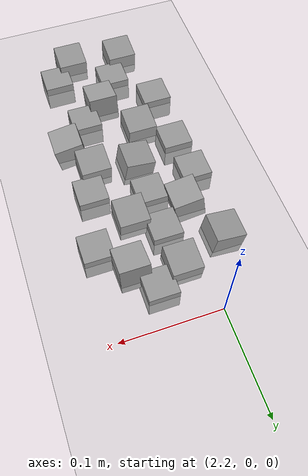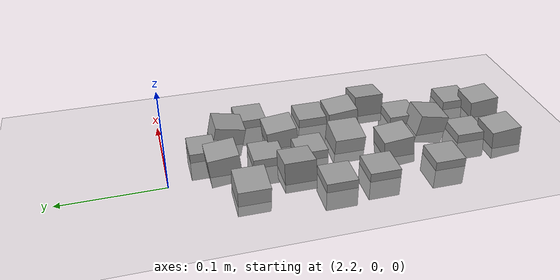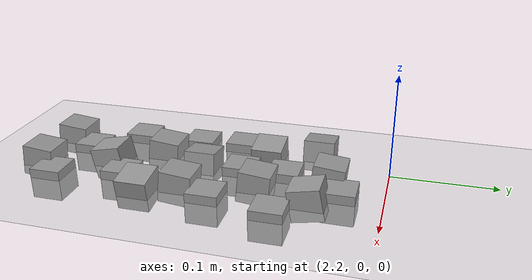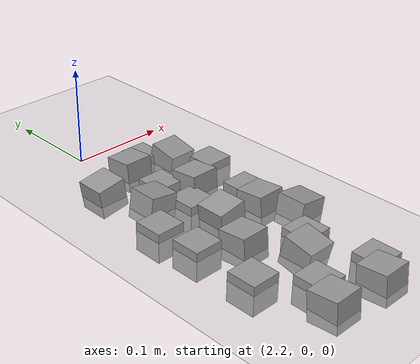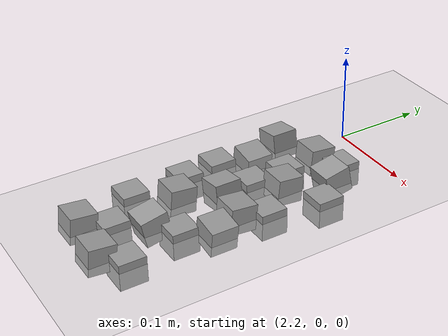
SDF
<sdf version="1.7">
 <world name="default">
  <model name="ground_plane">
   <static>1</static>
   <link name="link">
    <collision name="collision">
     <geometry><plane><normal>0 0 1</normal><size>100 100</size></plane></geometry>
     <surface><friction><ode><mu>100</mu><mu2>50</mu2></ode></friction></surface>
    </collision>
    <visual name="visual">
     <cast_shadows>0</cast_shadows>
     <geometry><plane><normal>0 0 1</normal><size>100 100</size></plane></geometry>
     <material>
      <script><uri>file://media/materials/scripts/gazebo.material</uri><name>Gazebo/Grey</name></script>
     </material>
    </visual>
   </link>
  </model>
  <model name="stone_road_4">
   <link name="link_0_clone_1">
    <inertial>
     <mass>1</mass>
     <inertia>
      <ixx>0.166667</ixx>
      <ixy>0</ixy>
      <ixz>0</ixz>
      <iyy>0.166667</iyy>
      <iyz>0</iyz>
      <izz>0.166667</izz>
     </inertia>
    </inertial>
    <pose>-0.022921 -0.129606 0.003778 0.2 -0 0</pose>
    <kinematic>1</kinematic>
    <visual name="visual">
     <geometry><box><size>0.03 0.03 0.03</size></box></geometry>
     <material>
      <lighting>1</lighting>
      <script><uri>file://media/materials/scripts/gazebo.material</uri><name>Gazebo/Grey</name></script>
      <shader type="pixel"><normal_map>__default__</normal_map></shader>
      <ambient>0.3 0.3 0.3 1</ambient>
      <diffuse>0.7 0.7 0.7 1</diffuse>
      <specular>0.01 0.01 0.01 1</specular>
      <emissive>0 0 0 1</emissive>
     </material>
    </visual>
    <collision name="collision">
     <geometry><box><size>0.03 0.03 0.03</size></box></geometry>
     <surface>
      <friction>
       <ode><mu>1</mu><mu2>1</mu2><fdir1>0 0 0</fdir1><slip1>0</slip1><slip2>0</slip2></ode>
       <torsional>
        <coefficient>1</coefficient>
        <patch_radius>0</patch_radius>
        <surface_radius>0</surface_radius>
        <use_patch_radius>1</use_patch_radius>
        <ode><slip>0</slip></ode>
       </torsional>
      </friction>
      <bounce><restitution_coefficient>0</restitution_coefficient><threshold>1e+06</threshold></bounce>
      <contact>
       <collide_without_contact>0</collide_without_contact>
       <collide_without_contact_bitmask>1</collide_without_contact_bitmask>
       <collide_bitmask>1</collide_bitmask>
       <ode>
        <soft_cfm>0</soft_cfm>
        <soft_erp>0.2</soft_erp>
        <kp>1e+13</kp>
        <kd>1</kd>
        <max_vel>0.01</max_vel>
        <min_depth>0</min_depth>
       </ode>
       <bullet>
        <split_impulse>1</split_impulse>
        <split_impulse_penetration_threshold>-0.01</split_impulse_penetration_threshold>
        <soft_cfm>0</soft_cfm>
        <soft_erp>0.2</soft_erp>
        <kp>1e+13</kp>
        <kd>1</kd>
       </bullet>
      </contact>
     </surface>
    </collision>
   </link>
   <link name="link_0_clone_11">
    <inertial>
     <mass>1</mass>
     <inertia>
      <ixx>0.166667</ixx>
      <ixy>0</ixy>
      <ixz>0</ixz>
      <iyy>0.166667</iyy>
      <iyz>0</iyz>
      <izz>0.166667</izz>
     </inertia>
    </inertial>
    <pose>0.007758 0.071496 0.003778 0.2 -0 0</pose>
    <kinematic>1</kinematic>
    <visual name="visual">
     <geometry><box><size>0.03 0.03 0.03</size></box></geometry>
     <material>
      <lighting>1</lighting>
      <script><uri>file://media/materials/scripts/gazebo.material</uri><name>Gazebo/Grey</name></script>
      <shader type="pixel"><normal_map>__default__</normal_map></shader>
      <ambient>0.3 0.3 0.3 1</ambient>
      <diffuse>0.7 0.7 0.7 1</diffuse>
      <specular>0.01 0.01 0.01 1</specular>
      <emissive>0 0 0 1</emissive>
     </material>
    </visual>
    <collision name="collision">
     <geometry><box><size>0.03 0.03 0.03</size></box></geometry>
     <surface>
      <friction>
       <ode><mu>1</mu><mu2>1</mu2><fdir1>0 0 0</fdir1><slip1>0</slip1><slip2>0</slip2></ode>
       <torsional>
        <coefficient>1</coefficient>
        <patch_radius>0</patch_radius>
        <surface_radius>0</surface_radius>
        <use_patch_radius>1</use_patch_radius>
        <ode><slip>0</slip></ode>
       </torsional>
      </friction>
      <bounce><restitution_coefficient>0</restitution_coefficient><threshold>1e+06</threshold></bounce>
      <contact>
       <collide_without_contact>0</collide_without_contact>
       <collide_without_contact_bitmask>1</collide_without_contact_bitmask>
       <collide_bitmask>1</collide_bitmask>
       <ode>
        <soft_cfm>0</soft_cfm>
        <soft_erp>0.2</soft_erp>
        <kp>1e+13</kp>
        <kd>1</kd>
        <max_vel>0.01</max_vel>
        <min_depth>0</min_depth>
       </ode>
       <bullet>
        <split_impulse>1</split_impulse>
        <split_impulse_penetration_threshold>-0.01</split_impulse_penetration_threshold>
        <soft_cfm>0</soft_cfm>
        <soft_erp>0.2</soft_erp>
        <kp>1e+13</kp>
        <kd>1</kd>
       </bullet>
      </contact>
     </surface>
    </collision>
   </link>
   <link name="link_0_clone_2">
    <inertial>
     <mass>1</mass>
     <inertia>
      <ixx>0.166667</ixx>
      <ixy>0</ixy>
      <ixz>0</ixz>
      <iyy>0.166667</iyy>
      <iyz>0</iyz>
      <izz>0.166667</izz>
     </inertia>
    </inertial>
    <pose>-0.065685 0.018139 0.003778 0 0.15 0</pose>
    <kinematic>1</kinematic>
    <visual name="visual">
     <geometry><box><size>0.03 0.03 0.03</size></box></geometry>
     <material>
      <lighting>1</lighting>
      <script><uri>file://media/materials/scripts/gazebo.material</uri><name>Gazebo/Grey</name></script>
      <shader type="pixel"><normal_map>__default__</normal_map></shader>
      <ambient>0.3 0.3 0.3 1</ambient>
      <diffuse>0.7 0.7 0.7 1</diffuse>
      <specular>0.01 0.01 0.01 1</specular>
      <emissive>0 0 0 1</emissive>
     </material>
    </visual>
    <collision name="collision">
     <geometry><box><size>0.03 0.03 0.03</size></box></geometry>
     <surface>
      <friction>
       <ode><mu>1</mu><mu2>1</mu2><fdir1>0 0 0</fdir1><slip1>0</slip1><slip2>0</slip2></ode>
       <torsional>
        <coefficient>1</coefficient>
        <patch_radius>0</patch_radius>
        <surface_radius>0</surface_radius>
        <use_patch_radius>1</use_patch_radius>
        <ode><slip>0</slip></ode>
       </torsional>
      </friction>
      <bounce><restitution_coefficient>0</restitution_coefficient><threshold>1e+06</threshold></bounce>
      <contact>
       <collide_without_contact>0</collide_without_contact>
       <collide_without_contact_bitmask>1</collide_without_contact_bitmask>
       <collide_bitmask>1</collide_bitmask>
       <ode>
        <soft_cfm>0</soft_cfm>
        <soft_erp>0.2</soft_erp>
        <kp>1e+13</kp>
        <kd>1</kd>
        <max_vel>0.01</max_vel>
        <min_depth>0</min_depth>
       </ode>
       <bullet>
        <split_impulse>1</split_impulse>
        <split_impulse_penetration_threshold>-0.01</split_impulse_penetration_threshold>
        <soft_cfm>0</soft_cfm>
        <soft_erp>0.2</soft_erp>
        <kp>1e+13</kp>
        <kd>1</kd>
       </bullet>
      </contact>
     </surface>
    </collision>
   </link>
   <link name="link_0_clone_2_clone_0">
    <inertial>
     <mass>1</mass>
     <inertia>
      <ixx>0.166667</ixx>
      <ixy>0</ixy>
      <ixz>0</ixz>
      <iyy>0.166667</iyy>
      <iyz>0</iyz>
      <izz>0.166667</izz>
     </inertia>
    </inertial>
    <pose>0.026852 -0.0813 0.003778 0 0.15 0</pose>
    <kinematic>1</kinematic>
    <visual name="visual">
     <geometry><box><size>0.03 0.03 0.03</size></box></geometry>
     <material>
      <lighting>1</lighting>
      <script><uri>file://media/materials/scripts/gazebo.material</uri><name>Gazebo/Grey</name></script>
      <shader type="pixel"><normal_map>__default__</normal_map></shader>
      <ambient>0.3 0.3 0.3 1</ambient>
      <diffuse>0.7 0.7 0.7 1</diffuse>
      <specular>0.01 0.01 0.01 1</specular>
      <emissive>0 0 0 1</emissive>
     </material>
    </visual>
    <collision name="collision">
     <geometry><box><size>0.03 0.03 0.03</size></box></geometry>
     <surface>
      <friction>
       <ode><mu>1</mu><mu2>1</mu2><fdir1>0 0 0</fdir1><slip1>0</slip1><slip2>0</slip2></ode>
       <torsional>
        <coefficient>1</coefficient>
        <patch_radius>0</patch_radius>
        <surface_radius>0</surface_radius>
        <use_patch_radius>1</use_patch_radius>
        <ode><slip>0</slip></ode>
       </torsional>
      </friction>
      <bounce><restitution_coefficient>0</restitution_coefficient><threshold>1e+06</threshold></bounce>
      <contact>
       <collide_without_contact>0</collide_without_contact>
       <collide_without_contact_bitmask>1</collide_without_contact_bitmask>
       <collide_bitmask>1</collide_bitmask>
       <ode>
        <soft_cfm>0</soft_cfm>
        <soft_erp>0.2</soft_erp>
        <kp>1e+13</kp>
        <kd>1</kd>
        <max_vel>0.01</max_vel>
        <min_depth>0</min_depth>
       </ode>
       <bullet>
        <split_impulse>1</split_impulse>
        <split_impulse_penetration_threshold>-0.01</split_impulse_penetration_threshold>
        <soft_cfm>0</soft_cfm>
        <soft_erp>0.2</soft_erp>
        <kp>1e+13</kp>
        <kd>1</kd>
       </bullet>
      </contact>
     </surface>
    </collision>
   </link>
   <link name="link_0_clone_2_clone_2_clone_0">
    <inertial>
     <mass>1</mass>
     <inertia>
      <ixx>0.166667</ixx>
      <ixy>0</ixy>
      <ixz>0</ixz>
      <iyy>0.166667</iyy>
      <iyz>0</iyz>
      <izz>0.166667</izz>
     </inertia>
    </inertial>
    <pose>-0.032874 -0.039714 0.003778 0 -0.15 0</pose>
    <kinematic>1</kinematic>
    <visual name="visual">
     <geometry><box><size>0.03 0.03 0.03</size></box></geometry>
     <material>
      <lighting>1</lighting>
      <script><uri>file://media/materials/scripts/gazebo.material</uri><name>Gazebo/Grey</name></script>
      <shader type="pixel"><normal_map>__default__</normal_map></shader>
      <ambient>0.3 0.3 0.3 1</ambient>
      <diffuse>0.7 0.7 0.7 1</diffuse>
      <specular>0.01 0.01 0.01 1</specular>
      <emissive>0 0 0 1</emissive>
     </material>
    </visual>
    <collision name="collision">
     <geometry><box><size>0.03 0.03 0.03</size></box></geometry>
     <surface>
      <friction>
       <ode><mu>1</mu><mu2>1</mu2><fdir1>0 0 0</fdir1><slip1>0</slip1><slip2>0</slip2></ode>
       <torsional>
        <coefficient>1</coefficient>
        <patch_radius>0</patch_radius>
        <surface_radius>0</surface_radius>
        <use_patch_radius>1</use_patch_radius>
        <ode><slip>0</slip></ode>
       </torsional>
      </friction>
      <bounce><restitution_coefficient>0</restitution_coefficient><threshold>1e+06</threshold></bounce>
      <contact>
       <collide_without_contact>0</collide_without_contact>
       <collide_without_contact_bitmask>1</collide_without_contact_bitmask>
       <collide_bitmask>1</collide_bitmask>
       <ode>
        <soft_cfm>0</soft_cfm>
        <soft_erp>0.2</soft_erp>
        <kp>1e+13</kp>
        <kd>1</kd>
        <max_vel>0.01</max_vel>
        <min_depth>0</min_depth>
       </ode>
       <bullet>
        <split_impulse>1</split_impulse>
        <split_impulse_penetration_threshold>-0.01</split_impulse_penetration_threshold>
        <soft_cfm>0</soft_cfm>
        <soft_erp>0.2</soft_erp>
        <kp>1e+13</kp>
        <kd>1</kd>
       </bullet>
      </contact>
     </surface>
    </collision>
   </link>
   <link name="link_0_clone_2_clone_2_clone_1">
    <inertial>
     <mass>1</mass>
     <inertia>
      <ixx>0.166667</ixx>
      <ixy>0</ixy>
      <ixz>0</ixz>
      <iyy>0.166667</iyy>
      <iyz>0</iyz>
      <izz>0.166667</izz>
     </inertia>
    </inertial>
    <pose>-0.085624 0.065625 0.003778 0 -0.15 0</pose>
    <kinematic>1</kinematic>
    <visual name="visual">
     <geometry><box><size>0.03 0.03 0.03</size></box></geometry>
     <material>
      <lighting>1</lighting>
      <script><uri>file://media/materials/scripts/gazebo.material</uri><name>Gazebo/Grey</name></script>
      <shader type="pixel"><normal_map>__default__</normal_map></shader>
      <ambient>0.3 0.3 0.3 1</ambient>
      <diffuse>0.7 0.7 0.7 1</diffuse>
      <specular>0.01 0.01 0.01 1</specular>
      <emissive>0 0 0 1</emissive>
     </material>
    </visual>
    <collision name="collision">
     <geometry><box><size>0.03 0.03 0.03</size></box></geometry>
     <surface>
      <friction>
       <ode><mu>1</mu><mu2>1</mu2><fdir1>0 0 0</fdir1><slip1>0</slip1><slip2>0</slip2></ode>
       <torsional>
        <coefficient>1</coefficient>
        <patch_radius>0</patch_radius>
        <surface_radius>0</surface_radius>
        <use_patch_radius>1</use_patch_radius>
        <ode><slip>0</slip></ode>
       </torsional>
      </friction>
      <bounce><restitution_coefficient>0</restitution_coefficient><threshold>1e+06</threshold></bounce>
      <contact>
       <collide_without_contact>0</collide_without_contact>
       <collide_without_contact_bitmask>1</collide_without_contact_bitmask>
       <collide_bitmask>1</collide_bitmask>
       <ode>
        <soft_cfm>0</soft_cfm>
        <soft_erp>0.2</soft_erp>
        <kp>1e+13</kp>
        <kd>1</kd>
        <max_vel>0.01</max_vel>
        <min_depth>0</min_depth>
       </ode>
       <bullet>
        <split_impulse>1</split_impulse>
        <split_impulse_penetration_threshold>-0.01</split_impulse_penetration_threshold>
        <soft_cfm>0</soft_cfm>
        <soft_erp>0.2</soft_erp>
        <kp>1e+13</kp>
        <kd>1</kd>
       </bullet>
      </contact>
     </surface>
    </collision>
   </link>
   <link name="link_0_clone_2_clone_2_clone_13_clone_clone_10">
    <inertial>
     <mass>1</mass>
     <inertia>
      <ixx>0.166667</ixx>
      <ixy>0</ixy>
      <ixz>0</ixz>
      <iyy>0.166667</iyy>
      <iyz>0</iyz>
      <izz>0.166667</izz>
     </inertia>
    </inertial>
    <pose>-0.006825 -0.196489 0.003778 -0.1 0 0</pose>
    <kinematic>1</kinematic>
    <visual name="visual">
     <geometry><box><size>0.03 0.03 0.03</size></box></geometry>
     <material>
      <lighting>1</lighting>
      <script><uri>file://media/materials/scripts/gazebo.material</uri><name>Gazebo/Grey</name></script>
      <shader type="pixel"><normal_map>__default__</normal_map></shader>
      <ambient>0.3 0.3 0.3 1</ambient>
      <diffuse>0.7 0.7 0.7 1</diffuse>
      <specular>0.01 0.01 0.01 1</specular>
      <emissive>0 0 0 1</emissive>
     </material>
    </visual>
    <collision name="collision">
     <geometry><box><size>0.03 0.03 0.03</size></box></geometry>
     <surface>
      <friction>
       <ode><mu>1</mu><mu2>1</mu2><fdir1>0 0 0</fdir1><slip1>0</slip1><slip2>0</slip2></ode>
       <torsional>
        <coefficient>1</coefficient>
        <patch_radius>0</patch_radius>
        <surface_radius>0</surface_radius>
        <use_patch_radius>1</use_patch_radius>
        <ode><slip>0</slip></ode>
       </torsional>
      </friction>
      <bounce><restitution_coefficient>0</restitution_coefficient><threshold>1e+06</threshold></bounce>
      <contact>
       <collide_without_contact>0</collide_without_contact>
       <collide_without_contact_bitmask>1</collide_without_contact_bitmask>
       <collide_bitmask>1</collide_bitmask>
       <ode>
        <soft_cfm>0</soft_cfm>
        <soft_erp>0.2</soft_erp>
        <kp>1e+13</kp>
        <kd>1</kd>
        <max_vel>0.01</max_vel>
        <min_depth>0</min_depth>
       </ode>
       <bullet>
        <split_impulse>1</split_impulse>
        <split_impulse_penetration_threshold>-0.01</split_impulse_penetration_threshold>
        <soft_cfm>0</soft_cfm>
        <soft_erp>0.2</soft_erp>
        <kp>1e+13</kp>
        <kd>1</kd>
       </bullet>
      </contact>
     </surface>
    </collision>
   </link>
   <link name="link_0_clone_2_clone_2_clone_13_clone_clone_16_clone_0">
    <inertial>
     <mass>1</mass>
     <inertia>
      <ixx>0.166667</ixx>
      <ixy>0</ixy>
      <ixz>0</ixz>
      <iyy>0.166667</iyy>
      <iyz>0</iyz>
      <izz>0.166667</izz>
     </inertia>
    </inertial>
    <pose>-0.010782 0.09679 -0.006222 0 -0 0</pose>
    <kinematic>1</kinematic>
    <visual name="visual">
     <geometry><box><size>0.03 0.03 0.03</size></box></geometry>
     <material>
      <lighting>1</lighting>
      <script><uri>file://media/materials/scripts/gazebo.material</uri><name>Gazebo/Grey</name></script>
      <shader type="pixel"><normal_map>__default__</normal_map></shader>
      <ambient>0.3 0.3 0.3 1</ambient>
      <diffuse>0.7 0.7 0.7 1</diffuse>
      <specular>0.01 0.01 0.01 1</specular>
      <emissive>0 0 0 1</emissive>
     </material>
    </visual>
    <collision name="collision">
     <geometry><box><size>0.03 0.03 0.03</size></box></geometry>
     <surface>
      <friction>
       <ode><mu>1</mu><mu2>1</mu2><fdir1>0 0 0</fdir1><slip1>0</slip1><slip2>0</slip2></ode>
       <torsional>
        <coefficient>1</coefficient>
        <patch_radius>0</patch_radius>
        <surface_radius>0</surface_radius>
        <use_patch_radius>1</use_patch_radius>
        <ode><slip>0</slip></ode>
       </torsional>
      </friction>
      <bounce><restitution_coefficient>0</restitution_coefficient><threshold>1e+06</threshold></bounce>
      <contact>
       <collide_without_contact>0</collide_without_contact>
       <collide_without_contact_bitmask>1</collide_without_contact_bitmask>
       <collide_bitmask>1</collide_bitmask>
       <ode>
        <soft_cfm>0</soft_cfm>
        <soft_erp>0.2</soft_erp>
        <kp>1e+13</kp>
        <kd>1</kd>
        <max_vel>0.01</max_vel>
        <min_depth>0</min_depth>
       </ode>
       <bullet>
        <split_impulse>1</split_impulse>
        <split_impulse_penetration_threshold>-0.01</split_impulse_penetration_threshold>
        <soft_cfm>0</soft_cfm>
        <soft_erp>0.2</soft_erp>
        <kp>1e+13</kp>
        <kd>1</kd>
       </bullet>
      </contact>
     </surface>
    </collision>
   </link>
   <link name="link_0_clone_2_clone_2_clone_13_clone_clone_16_clone_1">
    <inertial>
     <mass>1</mass>
     <inertia>
      <ixx>0.166667</ixx>
      <ixy>0</ixy>
      <ixz>0</ixz>
      <iyy>0.166667</iyy>
      <iyz>0</iyz>
      <izz>0.166667</izz>
     </inertia>
    </inertial>
    <pose>0.033787 0.042837 -0.006222 0 -0 0</pose>
    <kinematic>1</kinematic>
    <visual name="visual">
     <geometry><box><size>0.03 0.03 0.03</size></box></geometry>
     <material>
      <lighting>1</lighting>
      <script><uri>file://media/materials/scripts/gazebo.material</uri><name>Gazebo/Grey</name></script>
      <shader type="pixel"><normal_map>__default__</normal_map></shader>
      <ambient>0.3 0.3 0.3 1</ambient>
      <diffuse>0.7 0.7 0.7 1</diffuse>
      <specular>0.01 0.01 0.01 1</specular>
      <emissive>0 0 0 1</emissive>
     </material>
    </visual>
    <collision name="collision">
     <geometry><box><size>0.03 0.03 0.03</size></box></geometry>
     <surface>
      <friction>
       <ode><mu>1</mu><mu2>1</mu2><fdir1>0 0 0</fdir1><slip1>0</slip1><slip2>0</slip2></ode>
       <torsional>
        <coefficient>1</coefficient>
        <patch_radius>0</patch_radius>
        <surface_radius>0</surface_radius>
        <use_patch_radius>1</use_patch_radius>
        <ode><slip>0</slip></ode>
       </torsional>
      </friction>
      <bounce><restitution_coefficient>0</restitution_coefficient><threshold>1e+06</threshold></bounce>
      <contact>
       <collide_without_contact>0</collide_without_contact>
       <collide_without_contact_bitmask>1</collide_without_contact_bitmask>
       <collide_bitmask>1</collide_bitmask>
       <ode>
        <soft_cfm>0</soft_cfm>
        <soft_erp>0.2</soft_erp>
        <kp>1e+13</kp>
        <kd>1</kd>
        <max_vel>0.01</max_vel>
        <min_depth>0</min_depth>
       </ode>
       <bullet>
        <split_impulse>1</split_impulse>
        <split_impulse_penetration_threshold>-0.01</split_impulse_penetration_threshold>
        <soft_cfm>0</soft_cfm>
        <soft_erp>0.2</soft_erp>
        <kp>1e+13</kp>
        <kd>1</kd>
       </bullet>
      </contact>
     </surface>
    </collision>
   </link>
   <link name="link_0_clone_2_clone_2_clone_13_clone_clone_16_clone_10">
    <inertial>
     <mass>1</mass>
     <inertia>
      <ixx>0.166667</ixx>
      <ixy>0</ixy>
      <ixz>0</ixz>
      <iyy>0.166667</iyy>
      <iyz>0</iyz>
      <izz>0.166667</izz>
     </inertia>
    </inertial>
    <pose>-0.082186 -0.05781 -0.006222 0 -0 0</pose>
    <kinematic>1</kinematic>
    <visual name="visual">
     <geometry><box><size>0.03 0.03 0.03</size></box></geometry>
     <material>
      <lighting>1</lighting>
      <script><uri>file://media/materials/scripts/gazebo.material</uri><name>Gazebo/Grey</name></script>
      <shader type="pixel"><normal_map>__default__</normal_map></shader>
      <ambient>0.3 0.3 0.3 1</ambient>
      <diffuse>0.7 0.7 0.7 1</diffuse>
      <specular>0.01 0.01 0.01 1</specular>
      <emissive>0 0 0 1</emissive>
     </material>
    </visual>
    <collision name="collision">
     <geometry><box><size>0.03 0.03 0.03</size></box></geometry>
     <surface>
      <friction>
       <ode><mu>1</mu><mu2>1</mu2><fdir1>0 0 0</fdir1><slip1>0</slip1><slip2>0</slip2></ode>
       <torsional>
        <coefficient>1</coefficient>
        <patch_radius>0</patch_radius>
        <surface_radius>0</surface_radius>
        <use_patch_radius>1</use_patch_radius>
        <ode><slip>0</slip></ode>
       </torsional>
      </friction>
      <bounce><restitution_coefficient>0</restitution_coefficient><threshold>1e+06</threshold></bounce>
      <contact>
       <collide_without_contact>0</collide_without_contact>
       <collide_without_contact_bitmask>1</collide_without_contact_bitmask>
       <collide_bitmask>1</collide_bitmask>
       <ode>
        <soft_cfm>0</soft_cfm>
        <soft_erp>0.2</soft_erp>
        <kp>1e+13</kp>
        <kd>1</kd>
        <max_vel>0.01</max_vel>
        <min_depth>0</min_depth>
       </ode>
       <bullet>
        <split_impulse>1</split_impulse>
        <split_impulse_penetration_threshold>-0.01</split_impulse_penetration_threshold>
        <soft_cfm>0</soft_cfm>
        <soft_erp>0.2</soft_erp>
        <kp>1e+13</kp>
        <kd>1</kd>
       </bullet>
      </contact>
     </surface>
    </collision>
   </link>
   <link name="link_0_clone_2_clone_2_clone_13_clone_clone_16_clone_17">
    <inertial>
     <mass>1</mass>
     <inertia>
      <ixx>0.166667</ixx>
      <ixy>0</ixy>
      <ixz>0</ixz>
      <iyy>0.166667</iyy>
      <iyz>0</iyz>
      <izz>0.166667</izz>
     </inertia>
    </inertial>
    <pose>0.014877 -0.175392 -0.006222 0 -0 0</pose>
    <kinematic>1</kinematic>
    <visual name="visual">
     <geometry><box><size>0.03 0.03 0.03</size></box></geometry>
     <material>
      <lighting>1</lighting>
      <script><uri>file://media/materials/scripts/gazebo.material</uri><name>Gazebo/Grey</name></script>
      <shader type="pixel"><normal_map>__default__</normal_map></shader>
      <ambient>0.3 0.3 0.3 1</ambient>
      <diffuse>0.7 0.7 0.7 1</diffuse>
      <specular>0.01 0.01 0.01 1</specular>
      <emissive>0 0 0 1</emissive>
     </material>
    </visual>
    <collision name="collision">
     <geometry><box><size>0.03 0.03 0.03</size></box></geometry>
     <surface>
      <friction>
       <ode><mu>1</mu><mu2>1</mu2><fdir1>0 0 0</fdir1><slip1>0</slip1><slip2>0</slip2></ode>
       <torsional>
        <coefficient>1</coefficient>
        <patch_radius>0</patch_radius>
        <surface_radius>0</surface_radius>
        <use_patch_radius>1</use_patch_radius>
        <ode><slip>0</slip></ode>
       </torsional>
      </friction>
      <bounce><restitution_coefficient>0</restitution_coefficient><threshold>1e+06</threshold></bounce>
      <contact>
       <collide_without_contact>0</collide_without_contact>
       <collide_without_contact_bitmask>1</collide_without_contact_bitmask>
       <collide_bitmask>1</collide_bitmask>
       <ode>
        <soft_cfm>0</soft_cfm>
        <soft_erp>0.2</soft_erp>
        <kp>1e+13</kp>
        <kd>1</kd>
        <max_vel>0.01</max_vel>
        <min_depth>0</min_depth>
       </ode>
       <bullet>
        <split_impulse>1</split_impulse>
        <split_impulse_penetration_threshold>-0.01</split_impulse_penetration_threshold>
        <soft_cfm>0</soft_cfm>
        <soft_erp>0.2</soft_erp>
        <kp>1e+13</kp>
        <kd>1</kd>
       </bullet>
      </contact>
     </surface>
    </collision>
   </link>
   <link name="link_0_clone_2_clone_2_clone_13_clone_clone_16_clone_2">
    <inertial>
     <mass>1</mass>
     <inertia>
      <ixx>0.166667</ixx>
      <ixy>0</ixy>
      <ixz>0</ixz>
      <iyy>0.166667</iyy>
      <iyz>0</iyz>
      <izz>0.166667</izz>
     </inertia>
    </inertial>
    <pose>-0.035128 0.040728 -0.006222 0 -0 0</pose>
    <kinematic>1</kinematic>
    <visual name="visual">
     <geometry><box><size>0.03 0.03 0.03</size></box></geometry>
     <material>
      <lighting>1</lighting>
      <script><uri>file://media/materials/scripts/gazebo.material</uri><name>Gazebo/Grey</name></script>
      <shader type="pixel"><normal_map>__default__</normal_map></shader>
      <ambient>0.3 0.3 0.3 1</ambient>
      <diffuse>0.7 0.7 0.7 1</diffuse>
      <specular>0.01 0.01 0.01 1</specular>
      <emissive>0 0 0 1</emissive>
     </material>
    </visual>
    <collision name="collision">
     <geometry><box><size>0.03 0.03 0.03</size></box></geometry>
     <surface>
      <friction>
       <ode><mu>1</mu><mu2>1</mu2><fdir1>0 0 0</fdir1><slip1>0</slip1><slip2>0</slip2></ode>
       <torsional>
        <coefficient>1</coefficient>
        <patch_radius>0</patch_radius>
        <surface_radius>0</surface_radius>
        <use_patch_radius>1</use_patch_radius>
        <ode><slip>0</slip></ode>
       </torsional>
      </friction>
      <bounce><restitution_coefficient>0</restitution_coefficient><threshold>1e+06</threshold></bounce>
      <contact>
       <collide_without_contact>0</collide_without_contact>
       <collide_without_contact_bitmask>1</collide_without_contact_bitmask>
       <collide_bitmask>1</collide_bitmask>
       <ode>
        <soft_cfm>0</soft_cfm>
        <soft_erp>0.2</soft_erp>
        <kp>1e+13</kp>
        <kd>1</kd>
        <max_vel>0.01</max_vel>
        <min_depth>0</min_depth>
       </ode>
       <bullet>
        <split_impulse>1</split_impulse>
        <split_impulse_penetration_threshold>-0.01</split_impulse_penetration_threshold>
        <soft_cfm>0</soft_cfm>
        <soft_erp>0.2</soft_erp>
        <kp>1e+13</kp>
        <kd>1</kd>
       </bullet>
      </contact>
     </surface>
    </collision>
   </link>
   <link name="link_0_clone_2_clone_2_clone_13_clone_clone_16_clone_26">
    <inertial>
     <mass>1</mass>
     <inertia>
      <ixx>0.166667</ixx>
      <ixy>0</ixy>
      <ixz>0</ixz>
      <iyy>0.166667</iyy>
      <iyz>0</iyz>
      <izz>0.166667</izz>
     </inertia>
    </inertial>
    <pose>-0.035162 -0.002247 -0.006222 0 -0 0</pose>
    <kinematic>1</kinematic>
    <visual name="visual">
     <geometry><box><size>0.03 0.03 0.03</size></box></geometry>
     <material>
      <lighting>1</lighting>
      <script><uri>file://media/materials/scripts/gazebo.material</uri><name>Gazebo/Grey</name></script>
      <shader type="pixel"><normal_map>__default__</normal_map></shader>
      <ambient>0.3 0.3 0.3 1</ambient>
      <diffuse>0.7 0.7 0.7 1</diffuse>
      <specular>0.01 0.01 0.01 1</specular>
      <emissive>0 0 0 1</emissive>
     </material>
    </visual>
    <collision name="collision">
     <geometry><box><size>0.03 0.03 0.03</size></box></geometry>
     <surface>
      <friction>
       <ode><mu>1</mu><mu2>1</mu2><fdir1>0 0 0</fdir1><slip1>0</slip1><slip2>0</slip2></ode>
       <torsional>
        <coefficient>1</coefficient>
        <patch_radius>0</patch_radius>
        <surface_radius>0</surface_radius>
        <use_patch_radius>1</use_patch_radius>
        <ode><slip>0</slip></ode>
       </torsional>
      </friction>
      <bounce><restitution_coefficient>0</restitution_coefficient><threshold>1e+06</threshold></bounce>
      <contact>
       <collide_without_contact>0</collide_without_contact>
       <collide_without_contact_bitmask>1</collide_without_contact_bitmask>
       <collide_bitmask>1</collide_bitmask>
       <ode>
        <soft_cfm>0</soft_cfm>
        <soft_erp>0.2</soft_erp>
        <kp>1e+13</kp>
        <kd>1</kd>
        <max_vel>0.01</max_vel>
        <min_depth>0</min_depth>
       </ode>
       <bullet>
        <split_impulse>1</split_impulse>
        <split_impulse_penetration_threshold>-0.01</split_impulse_penetration_threshold>
        <soft_cfm>0</soft_cfm>
        <soft_erp>0.2</soft_erp>
        <kp>1e+13</kp>
        <kd>1</kd>
       </bullet>
      </contact>
     </surface>
    </collision>
   </link>
   <link name="link_0_clone_2_clone_2_clone_13_clone_clone_16_clone_5">
    <inertial>
     <mass>1</mass>
     <inertia>
      <ixx>0.166667</ixx>
      <ixy>0</ixy>
      <ixz>0</ixz>
      <iyy>0.166667</iyy>
      <iyz>0</iyz>
      <izz>0.166667</izz>
     </inertia>
    </inertial>
    <pose>-0.086674 -0.014784 -0.006222 0 -0 0</pose>
    <kinematic>1</kinematic>
    <visual name="visual">
     <geometry><box><size>0.03 0.03 0.03</size></box></geometry>
     <material>
      <lighting>1</lighting>
      <script><uri>file://media/materials/scripts/gazebo.material</uri><name>Gazebo/Grey</name></script>
      <shader type="pixel"><normal_map>__default__</normal_map></shader>
      <ambient>0.3 0.3 0.3 1</ambient>
      <diffuse>0.7 0.7 0.7 1</diffuse>
      <specular>0.01 0.01 0.01 1</specular>
      <emissive>0 0 0 1</emissive>
     </material>
    </visual>
    <collision name="collision">
     <geometry><box><size>0.03 0.03 0.03</size></box></geometry>
     <surface>
      <friction>
       <ode><mu>1</mu><mu2>1</mu2><fdir1>0 0 0</fdir1><slip1>0</slip1><slip2>0</slip2></ode>
       <torsional>
        <coefficient>1</coefficient>
        <patch_radius>0</patch_radius>
        <surface_radius>0</surface_radius>
        <use_patch_radius>1</use_patch_radius>
        <ode><slip>0</slip></ode>
       </torsional>
      </friction>
      <bounce><restitution_coefficient>0</restitution_coefficient><threshold>1e+06</threshold></bounce>
      <contact>
       <collide_without_contact>0</collide_without_contact>
       <collide_without_contact_bitmask>1</collide_without_contact_bitmask>
       <collide_bitmask>1</collide_bitmask>
       <ode>
        <soft_cfm>0</soft_cfm>
        <soft_erp>0.2</soft_erp>
        <kp>1e+13</kp>
        <kd>1</kd>
        <max_vel>0.01</max_vel>
        <min_depth>0</min_depth>
       </ode>
       <bullet>
        <split_impulse>1</split_impulse>
        <split_impulse_penetration_threshold>-0.01</split_impulse_penetration_threshold>
        <soft_cfm>0</soft_cfm>
        <soft_erp>0.2</soft_erp>
        <kp>1e+13</kp>
        <kd>1</kd>
       </bullet>
      </contact>
     </surface>
    </collision>
   </link>
   <link name="link_0_clone_2_clone_2_clone_13_clone_clone_16_clone_6">
    <inertial>
     <mass>1</mass>
     <inertia>
      <ixx>0.166667</ixx>
      <ixy>0</ixy>
      <ixz>0</ixz>
      <iyy>0.166667</iyy>
      <iyz>0</iyz>
      <izz>0.166667</izz>
     </inertia>
    </inertial>
    <pose>0.020774 -0.018727 -0.006222 0 -0 0</pose>
    <kinematic>1</kinematic>
    <visual name="visual">
     <geometry><box><size>0.03 0.03 0.03</size></box></geometry>
     <material>
      <lighting>1</lighting>
      <script><uri>file://media/materials/scripts/gazebo.material</uri><name>Gazebo/Grey</name></script>
      <shader type="pixel"><normal_map>__default__</normal_map></shader>
      <ambient>0.3 0.3 0.3 1</ambient>
      <diffuse>0.7 0.7 0.7 1</diffuse>
      <specular>0.01 0.01 0.01 1</specular>
      <emissive>0 0 0 1</emissive>
     </material>
    </visual>
    <collision name="collision">
     <geometry><box><size>0.03 0.03 0.03</size></box></geometry>
     <surface>
      <friction>
       <ode><mu>1</mu><mu2>1</mu2><fdir1>0 0 0</fdir1><slip1>0</slip1><slip2>0</slip2></ode>
       <torsional>
        <coefficient>1</coefficient>
        <patch_radius>0</patch_radius>
        <surface_radius>0</surface_radius>
        <use_patch_radius>1</use_patch_radius>
        <ode><slip>0</slip></ode>
       </torsional>
      </friction>
      <bounce><restitution_coefficient>0</restitution_coefficient><threshold>1e+06</threshold></bounce>
      <contact>
       <collide_without_contact>0</collide_without_contact>
       <collide_without_contact_bitmask>1</collide_without_contact_bitmask>
       <collide_bitmask>1</collide_bitmask>
       <ode>
        <soft_cfm>0</soft_cfm>
        <soft_erp>0.2</soft_erp>
        <kp>1e+13</kp>
        <kd>1</kd>
        <max_vel>0.01</max_vel>
        <min_depth>0</min_depth>
       </ode>
       <bullet>
        <split_impulse>1</split_impulse>
        <split_impulse_penetration_threshold>-0.01</split_impulse_penetration_threshold>
        <soft_cfm>0</soft_cfm>
        <soft_erp>0.2</soft_erp>
        <kp>1e+13</kp>
        <kd>1</kd>
       </bullet>
      </contact>
     </surface>
    </collision>
   </link>
   <link name="link_0_clone_2_clone_2_clone_13_clone_clone_16_clone_7">
    <inertial>
     <mass>1</mass>
     <inertia>
      <ixx>0.166667</ixx>
      <ixy>0</ixy>
      <ixz>0</ixz>
      <iyy>0.166667</iyy>
      <iyz>0</iyz>
      <izz>0.166667</izz>
     </inertia>
    </inertial>
    <pose>0.000883 -0.109959 -0.006222 0 -0 0</pose>
    <kinematic>1</kinematic>
    <visual name="visual">
     <geometry><box><size>0.03 0.03 0.03</size></box></geometry>
     <material>
      <lighting>1</lighting>
      <script><uri>file://media/materials/scripts/gazebo.material</uri><name>Gazebo/Grey</name></script>
      <shader type="pixel"><normal_map>__default__</normal_map></shader>
      <ambient>0.3 0.3 0.3 1</ambient>
      <diffuse>0.7 0.7 0.7 1</diffuse>
      <specular>0.01 0.01 0.01 1</specular>
      <emissive>0 0 0 1</emissive>
     </material>
    </visual>
    <collision name="collision">
     <geometry><box><size>0.03 0.03 0.03</size></box></geometry>
     <surface>
      <friction>
       <ode><mu>1</mu><mu2>1</mu2><fdir1>0 0 0</fdir1><slip1>0</slip1><slip2>0</slip2></ode>
       <torsional>
        <coefficient>1</coefficient>
        <patch_radius>0</patch_radius>
        <surface_radius>0</surface_radius>
        <use_patch_radius>1</use_patch_radius>
        <ode><slip>0</slip></ode>
       </torsional>
      </friction>
      <bounce><restitution_coefficient>0</restitution_coefficient><threshold>1e+06</threshold></bounce>
      <contact>
       <collide_without_contact>0</collide_without_contact>
       <collide_without_contact_bitmask>1</collide_without_contact_bitmask>
       <collide_bitmask>1</collide_bitmask>
       <ode>
        <soft_cfm>0</soft_cfm>
        <soft_erp>0.2</soft_erp>
        <kp>1e+13</kp>
        <kd>1</kd>
        <max_vel>0.01</max_vel>
        <min_depth>0</min_depth>
       </ode>
       <bullet>
        <split_impulse>1</split_impulse>
        <split_impulse_penetration_threshold>-0.01</split_impulse_penetration_threshold>
        <soft_cfm>0</soft_cfm>
        <soft_erp>0.2</soft_erp>
        <kp>1e+13</kp>
        <kd>1</kd>
       </bullet>
      </contact>
     </surface>
    </collision>
   </link>
   <link name="link_0_clone_2_clone_2_clone_13_clone_clone_16_clone_8">
    <inertial>
     <mass>1</mass>
     <inertia>
      <ixx>0.166667</ixx>
      <ixy>0</ixy>
      <ixz>0</ixz>
      <iyy>0.166667</iyy>
      <iyz>0</iyz>
      <izz>0.166667</izz>
     </inertia>
    </inertial>
    <pose>-0.045715 -0.162471 -0.006222 0 -0 0</pose>
    <kinematic>1</kinematic>
    <visual name="visual">
     <geometry><box><size>0.03 0.03 0.03</size></box></geometry>
     <material>
      <lighting>1</lighting>
      <script><uri>file://media/materials/scripts/gazebo.material</uri><name>Gazebo/Grey</name></script>
      <shader type="pixel"><normal_map>__default__</normal_map></shader>
      <ambient>0.3 0.3 0.3 1</ambient>
      <diffuse>0.7 0.7 0.7 1</diffuse>
      <specular>0.01 0.01 0.01 1</specular>
      <emissive>0 0 0 1</emissive>
     </material>
    </visual>
    <collision name="collision">
     <geometry><box><size>0.03 0.03 0.03</size></box></geometry>
     <surface>
      <friction>
       <ode><mu>1</mu><mu2>1</mu2><fdir1>0 0 0</fdir1><slip1>0</slip1><slip2>0</slip2></ode>
       <torsional>
        <coefficient>1</coefficient>
        <patch_radius>0</patch_radius>
        <surface_radius>0</surface_radius>
        <use_patch_radius>1</use_patch_radius>
        <ode><slip>0</slip></ode>
       </torsional>
      </friction>
      <bounce><restitution_coefficient>0</restitution_coefficient><threshold>1e+06</threshold></bounce>
      <contact>
       <collide_without_contact>0</collide_without_contact>
       <collide_without_contact_bitmask>1</collide_without_contact_bitmask>
       <collide_bitmask>1</collide_bitmask>
       <ode>
        <soft_cfm>0</soft_cfm>
        <soft_erp>0.2</soft_erp>
        <kp>1e+13</kp>
        <kd>1</kd>
        <max_vel>0.01</max_vel>
        <min_depth>0</min_depth>
       </ode>
       <bullet>
        <split_impulse>1</split_impulse>
        <split_impulse_penetration_threshold>-0.01</split_impulse_penetration_threshold>
        <soft_cfm>0</soft_cfm>
        <soft_erp>0.2</soft_erp>
        <kp>1e+13</kp>
        <kd>1</kd>
       </bullet>
      </contact>
     </surface>
    </collision>
   </link>
   <link name="link_0_clone_2_clone_2_clone_13_clone_clone_16_clone_9">
    <inertial>
     <mass>1</mass>
     <inertia>
      <ixx>0.166667</ixx>
      <ixy>0</ixy>
      <ixz>0</ixz>
      <iyy>0.166667</iyy>
      <iyz>0</iyz>
      <izz>0.166667</izz>
     </inertia>
    </inertial>
    <pose>-0.081689 -0.122641 -0.006222 0 -0 0</pose>
    <kinematic>1</kinematic>
    <visual name="visual">
     <geometry><box><size>0.03 0.03 0.03</size></box></geometry>
     <material>
      <lighting>1</lighting>
      <script><uri>file://media/materials/scripts/gazebo.material</uri><name>Gazebo/Grey</name></script>
      <shader type="pixel"><normal_map>__default__</normal_map></shader>
      <ambient>0.3 0.3 0.3 1</ambient>
      <diffuse>0.7 0.7 0.7 1</diffuse>
      <specular>0.01 0.01 0.01 1</specular>
      <emissive>0 0 0 1</emissive>
     </material>
    </visual>
    <collision name="collision">
     <geometry><box><size>0.03 0.03 0.03</size></box></geometry>
     <surface>
      <friction>
       <ode><mu>1</mu><mu2>1</mu2><fdir1>0 0 0</fdir1><slip1>0</slip1><slip2>0</slip2></ode>
       <torsional>
        <coefficient>1</coefficient>
        <patch_radius>0</patch_radius>
        <surface_radius>0</surface_radius>
        <use_patch_radius>1</use_patch_radius>
        <ode><slip>0</slip></ode>
       </torsional>
      </friction>
      <bounce><restitution_coefficient>0</restitution_coefficient><threshold>1e+06</threshold></bounce>
      <contact>
       <collide_without_contact>0</collide_without_contact>
       <collide_without_contact_bitmask>1</collide_without_contact_bitmask>
       <collide_bitmask>1</collide_bitmask>
       <ode>
        <soft_cfm>0</soft_cfm>
        <soft_erp>0.2</soft_erp>
        <kp>1e+13</kp>
        <kd>1</kd>
        <max_vel>0.01</max_vel>
        <min_depth>0</min_depth>
       </ode>
       <bullet>
        <split_impulse>1</split_impulse>
        <split_impulse_penetration_threshold>-0.01</split_impulse_penetration_threshold>
        <soft_cfm>0</soft_cfm>
        <soft_erp>0.2</soft_erp>
        <kp>1e+13</kp>
        <kd>1</kd>
       </bullet>
      </contact>
     </surface>
    </collision>
   </link>
   <link name="link_0_clone_2_clone_2_clone_13_clone_clone_2">
    <inertial>
     <mass>1</mass>
     <inertia>
      <ixx>0.166667</ixx>
      <ixy>0</ixy>
      <ixz>0</ixz>
      <iyy>0.166667</iyy>
      <iyz>0</iyz>
      <izz>0.166667</izz>
     </inertia>
    </inertial>
    <pose>-0.037997 0.082571 0.003778 -0.1 0 0</pose>
    <kinematic>1</kinematic>
    <visual name="visual">
     <geometry><box><size>0.03 0.03 0.03</size></box></geometry>
     <material>
      <lighting>1</lighting>
      <script><uri>file://media/materials/scripts/gazebo.material</uri><name>Gazebo/Grey</name></script>
      <shader type="pixel"><normal_map>__default__</normal_map></shader>
      <ambient>0.3 0.3 0.3 1</ambient>
      <diffuse>0.7 0.7 0.7 1</diffuse>
      <specular>0.01 0.01 0.01 1</specular>
      <emissive>0 0 0 1</emissive>
     </material>
    </visual>
    <collision name="collision">
     <geometry><box><size>0.03 0.03 0.03</size></box></geometry>
     <surface>
      <friction>
       <ode><mu>1</mu><mu2>1</mu2><fdir1>0 0 0</fdir1><slip1>0</slip1><slip2>0</slip2></ode>
       <torsional>
        <coefficient>1</coefficient>
        <patch_radius>0</patch_radius>
        <surface_radius>0</surface_radius>
        <use_patch_radius>1</use_patch_radius>
        <ode><slip>0</slip></ode>
       </torsional>
      </friction>
      <bounce><restitution_coefficient>0</restitution_coefficient><threshold>1e+06</threshold></bounce>
      <contact>
       <collide_without_contact>0</collide_without_contact>
       <collide_without_contact_bitmask>1</collide_without_contact_bitmask>
       <collide_bitmask>1</collide_bitmask>
       <ode>
        <soft_cfm>0</soft_cfm>
        <soft_erp>0.2</soft_erp>
        <kp>1e+13</kp>
        <kd>1</kd>
        <max_vel>0.01</max_vel>
        <min_depth>0</min_depth>
       </ode>
       <bullet>
        <split_impulse>1</split_impulse>
        <split_impulse_penetration_threshold>-0.01</split_impulse_penetration_threshold>
        <soft_cfm>0</soft_cfm>
        <soft_erp>0.2</soft_erp>
        <kp>1e+13</kp>
        <kd>1</kd>
       </bullet>
      </contact>
     </surface>
    </collision>
   </link>
   <link name="link_0_clone_2_clone_2_clone_13_clone_clone_3">
    <inertial>
     <mass>1</mass>
     <inertia>
      <ixx>0.166667</ixx>
      <ixy>0</ixy>
      <ixz>0</ixz>
      <iyy>0.166667</iyy>
      <iyz>0</iyz>
      <izz>0.166667</izz>
     </inertia>
    </inertial>
    <pose>-0.008408 0.020239 0.003778 -0.1 0 0</pose>
    <kinematic>1</kinematic>
    <visual name="visual">
     <geometry><box><size>0.03 0.03 0.03</size></box></geometry>
     <material>
      <lighting>1</lighting>
      <script><uri>file://media/materials/scripts/gazebo.material</uri><name>Gazebo/Grey</name></script>
      <shader type="pixel"><normal_map>__default__</normal_map></shader>
      <ambient>0.3 0.3 0.3 1</ambient>
      <diffuse>0.7 0.7 0.7 1</diffuse>
      <specular>0.01 0.01 0.01 1</specular>
      <emissive>0 0 0 1</emissive>
     </material>
    </visual>
    <collision name="collision">
     <geometry><box><size>0.03 0.03 0.03</size></box></geometry>
     <surface>
      <friction>
       <ode><mu>1</mu><mu2>1</mu2><fdir1>0 0 0</fdir1><slip1>0</slip1><slip2>0</slip2></ode>
       <torsional>
        <coefficient>1</coefficient>
        <patch_radius>0</patch_radius>
        <surface_radius>0</surface_radius>
        <use_patch_radius>1</use_patch_radius>
        <ode><slip>0</slip></ode>
       </torsional>
      </friction>
      <bounce><restitution_coefficient>0</restitution_coefficient><threshold>1e+06</threshold></bounce>
      <contact>
       <collide_without_contact>0</collide_without_contact>
       <collide_without_contact_bitmask>1</collide_without_contact_bitmask>
       <collide_bitmask>1</collide_bitmask>
       <ode>
        <soft_cfm>0</soft_cfm>
        <soft_erp>0.2</soft_erp>
        <kp>1e+13</kp>
        <kd>1</kd>
        <max_vel>0.01</max_vel>
        <min_depth>0</min_depth>
       </ode>
       <bullet>
        <split_impulse>1</split_impulse>
        <split_impulse_penetration_threshold>-0.01</split_impulse_penetration_threshold>
        <soft_cfm>0</soft_cfm>
        <soft_erp>0.2</soft_erp>
        <kp>1e+13</kp>
        <kd>1</kd>
       </bullet>
      </contact>
     </surface>
    </collision>
   </link>
   <link name="link_0_clone_2_clone_2_clone_13_clone_clone_6">
    <inertial>
     <mass>1</mass>
     <inertia>
      <ixx>0.166667</ixx>
      <ixy>0</ixy>
      <ixz>0</ixz>
      <iyy>0.166667</iyy>
      <iyz>0</iyz>
      <izz>0.166667</izz>
     </inertia>
    </inertial>
    <pose>0.009445 -0.048118 0.003778 -0.1 0 0</pose>
    <kinematic>1</kinematic>
    <visual name="visual">
     <geometry><box><size>0.03 0.03 0.03</size></box></geometry>
     <material>
      <lighting>1</lighting>
      <script><uri>file://media/materials/scripts/gazebo.material</uri><name>Gazebo/Grey</name></script>
      <shader type="pixel"><normal_map>__default__</normal_map></shader>
      <ambient>0.3 0.3 0.3 1</ambient>
      <diffuse>0.7 0.7 0.7 1</diffuse>
      <specular>0.01 0.01 0.01 1</specular>
      <emissive>0 0 0 1</emissive>
     </material>
    </visual>
    <collision name="collision">
     <geometry><box><size>0.03 0.03 0.03</size></box></geometry>
     <surface>
      <friction>
       <ode><mu>1</mu><mu2>1</mu2><fdir1>0 0 0</fdir1><slip1>0</slip1><slip2>0</slip2></ode>
       <torsional>
        <coefficient>1</coefficient>
        <patch_radius>0</patch_radius>
        <surface_radius>0</surface_radius>
        <use_patch_radius>1</use_patch_radius>
        <ode><slip>0</slip></ode>
       </torsional>
      </friction>
      <bounce><restitution_coefficient>0</restitution_coefficient><threshold>1e+06</threshold></bounce>
      <contact>
       <collide_without_contact>0</collide_without_contact>
       <collide_without_contact_bitmask>1</collide_without_contact_bitmask>
       <collide_bitmask>1</collide_bitmask>
       <ode>
        <soft_cfm>0</soft_cfm>
        <soft_erp>0.2</soft_erp>
        <kp>1e+13</kp>
        <kd>1</kd>
        <max_vel>0.01</max_vel>
        <min_depth>0</min_depth>
       </ode>
       <bullet>
        <split_impulse>1</split_impulse>
        <split_impulse_penetration_threshold>-0.01</split_impulse_penetration_threshold>
        <soft_cfm>0</soft_cfm>
        <soft_erp>0.2</soft_erp>
        <kp>1e+13</kp>
        <kd>1</kd>
       </bullet>
      </contact>
     </surface>
    </collision>
   </link>
   <link name="link_0_clone_2_clone_2_clone_13_clone_clone_8">
    <inertial>
     <mass>1</mass>
     <inertia>
      <ixx>0.166667</ixx>
      <ixy>0</ixy>
      <ixz>0</ixz>
      <iyy>0.166667</iyy>
      <iyz>0</iyz>
      <izz>0.166667</izz>
     </inertia>
    </inertial>
    <pose>-0.051207 -0.083778 0.003778 -0.1 0 0</pose>
    <kinematic>1</kinematic>
    <visual name="visual">
     <geometry><box><size>0.03 0.03 0.03</size></box></geometry>
     <material>
      <lighting>1</lighting>
      <script><uri>file://media/materials/scripts/gazebo.material</uri><name>Gazebo/Grey</name></script>
      <shader type="pixel"><normal_map>__default__</normal_map></shader>
      <ambient>0.3 0.3 0.3 1</ambient>
      <diffuse>0.7 0.7 0.7 1</diffuse>
      <specular>0.01 0.01 0.01 1</specular>
      <emissive>0 0 0 1</emissive>
     </material>
    </visual>
    <collision name="collision">
     <geometry><box><size>0.03 0.03 0.03</size></box></geometry>
     <surface>
      <friction>
       <ode><mu>1</mu><mu2>1</mu2><fdir1>0 0 0</fdir1><slip1>0</slip1><slip2>0</slip2></ode>
       <torsional>
        <coefficient>1</coefficient>
        <patch_radius>0</patch_radius>
        <surface_radius>0</surface_radius>
        <use_patch_radius>1</use_patch_radius>
        <ode><slip>0</slip></ode>
       </torsional>
      </friction>
      <bounce><restitution_coefficient>0</restitution_coefficient><threshold>1e+06</threshold></bounce>
      <contact>
       <collide_without_contact>0</collide_without_contact>
       <collide_without_contact_bitmask>1</collide_without_contact_bitmask>
       <collide_bitmask>1</collide_bitmask>
       <ode>
        <soft_cfm>0</soft_cfm>
        <soft_erp>0.2</soft_erp>
        <kp>1e+13</kp>
        <kd>1</kd>
        <max_vel>0.01</max_vel>
        <min_depth>0</min_depth>
       </ode>
       <bullet>
        <split_impulse>1</split_impulse>
        <split_impulse_penetration_threshold>-0.01</split_impulse_penetration_threshold>
        <soft_cfm>0</soft_cfm>
        <soft_erp>0.2</soft_erp>
        <kp>1e+13</kp>
        <kd>1</kd>
       </bullet>
      </contact>
     </surface>
    </collision>
   </link>
   <link name="link_0_clone_2_clone_2_clone_13_clone_clone_9">
    <inertial>
     <mass>1</mass>
     <inertia>
      <ixx>0.166667</ixx>
      <ixy>0</ixy>
      <ixz>0</ixz>
      <iyy>0.166667</iyy>
      <iyz>0</iyz>
      <izz>0.166667</izz>
     </inertia>
    </inertial>
    <pose>-0.062692 -0.190617 0.003778 -0.1 0 0</pose>
    <kinematic>1</kinematic>
    <visual name="visual">
     <geometry><box><size>0.03 0.03 0.03</size></box></geometry>
     <material>
      <lighting>1</lighting>
      <script><uri>file://media/materials/scripts/gazebo.material</uri><name>Gazebo/Grey</name></script>
      <shader type="pixel"><normal_map>__default__</normal_map></shader>
      <ambient>0.3 0.3 0.3 1</ambient>
      <diffuse>0.7 0.7 0.7 1</diffuse>
      <specular>0.01 0.01 0.01 1</specular>
      <emissive>0 0 0 1</emissive>
     </material>
    </visual>
    <collision name="collision">
     <geometry><box><size>0.03 0.03 0.03</size></box></geometry>
     <surface>
      <friction>
       <ode><mu>1</mu><mu2>1</mu2><fdir1>0 0 0</fdir1><slip1>0</slip1><slip2>0</slip2></ode>
       <torsional>
        <coefficient>1</coefficient>
        <patch_radius>0</patch_radius>
        <surface_radius>0</surface_radius>
        <use_patch_radius>1</use_patch_radius>
        <ode><slip>0</slip></ode>
       </torsional>
      </friction>
      <bounce><restitution_coefficient>0</restitution_coefficient><threshold>1e+06</threshold></bounce>
      <contact>
       <collide_without_contact>0</collide_without_contact>
       <collide_without_contact_bitmask>1</collide_without_contact_bitmask>
       <collide_bitmask>1</collide_bitmask>
       <ode>
        <soft_cfm>0</soft_cfm>
        <soft_erp>0.2</soft_erp>
        <kp>1e+13</kp>
        <kd>1</kd>
        <max_vel>0.01</max_vel>
        <min_depth>0</min_depth>
       </ode>
       <bullet>
        <split_impulse>1</split_impulse>
        <split_impulse_penetration_threshold>-0.01</split_impulse_penetration_threshold>
        <soft_cfm>0</soft_cfm>
        <soft_erp>0.2</soft_erp>
        <kp>1e+13</kp>
        <kd>1</kd>
       </bullet>
      </contact>
     </surface>
    </collision>
   </link>
   <static>0</static>
   <pose>2.25857 -0.135925 -0 0 -0 0</pose>
  </model>
 </world>
</sdf>
